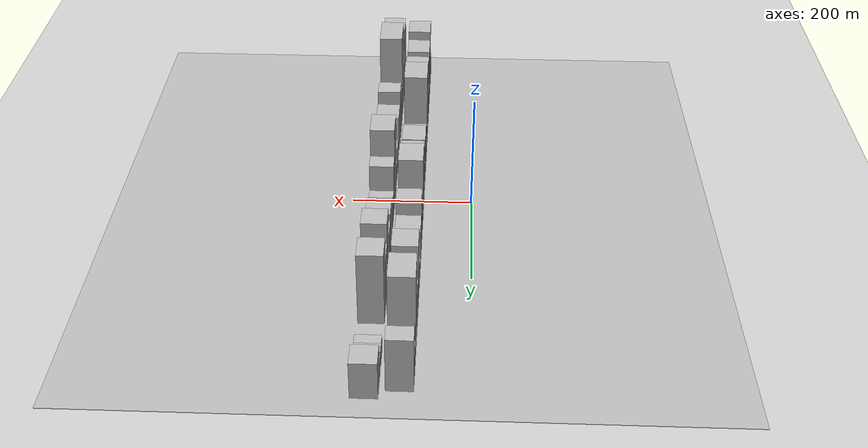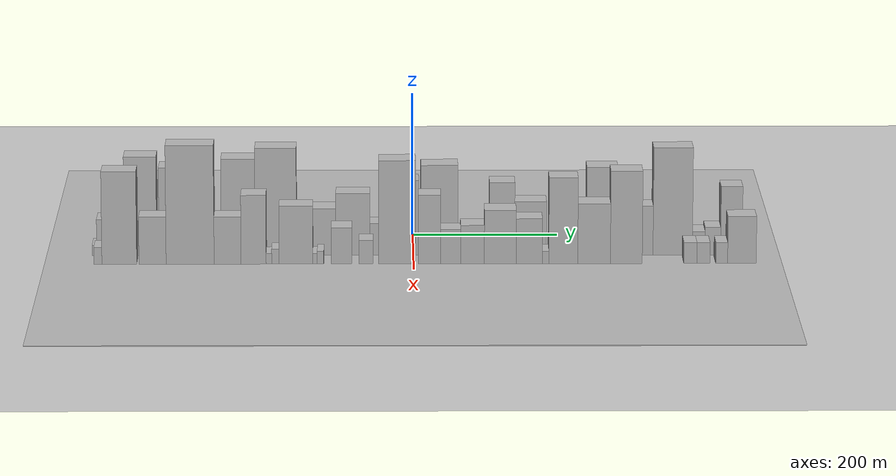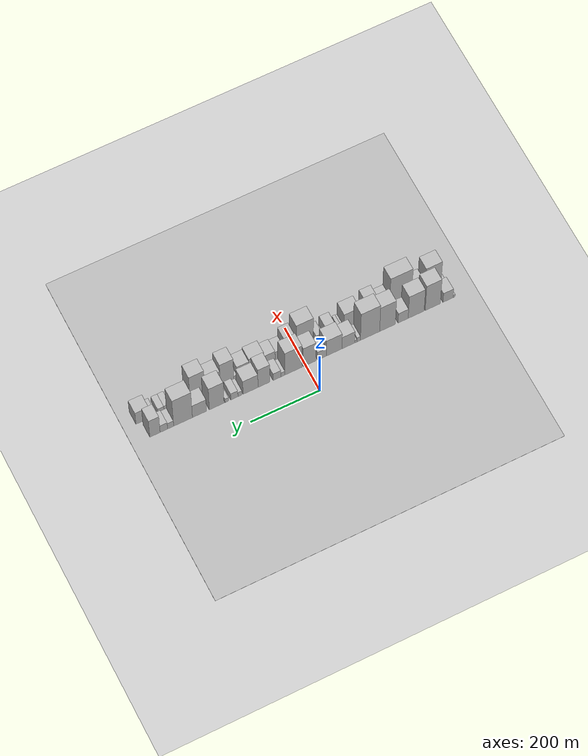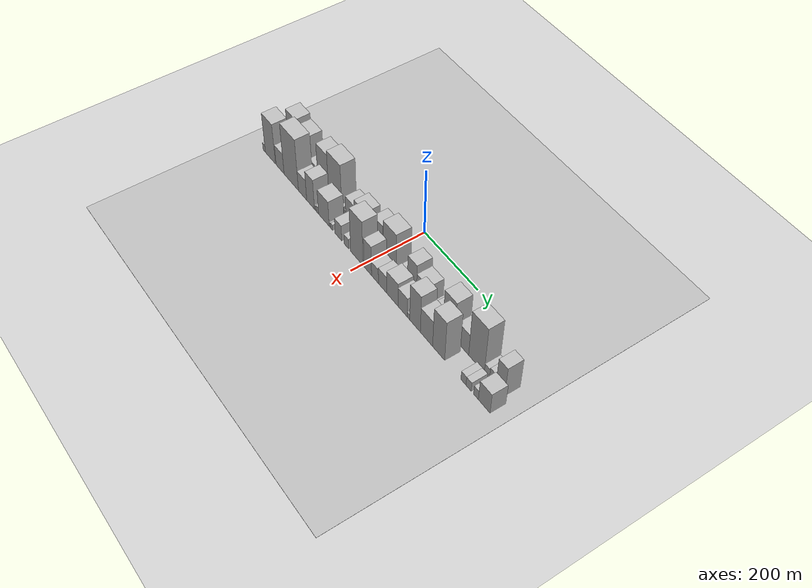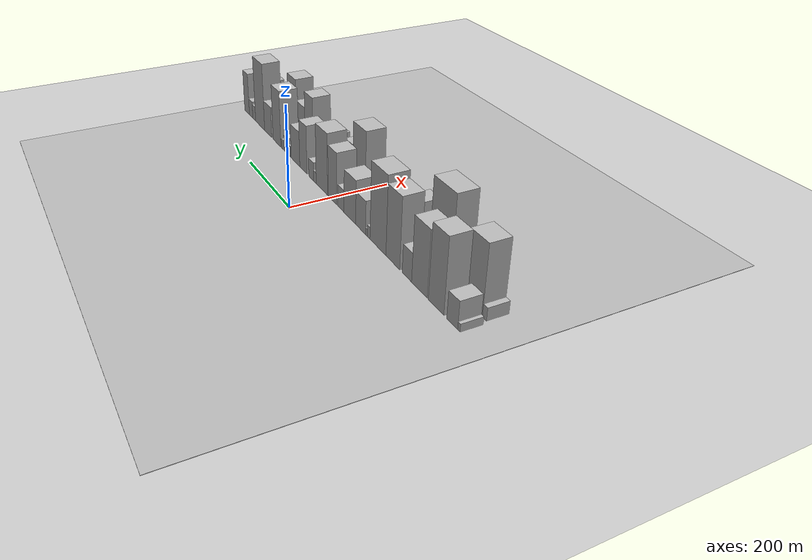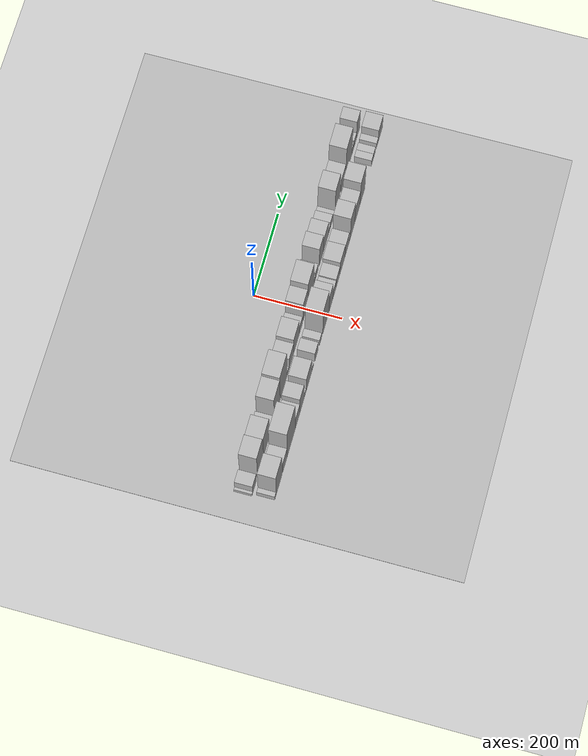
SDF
<sdf version="1.6">
 <world name="default">
  <include><name>ground_plane_1</name><uri>model://HANNAS_ground_plane</uri></include>
  <include>
   <name>ground_plane_2</name>
   <uri>model://HANNAS_ground_plane</uri>
   <pose>100 0 0  0 0 0</pose>
  </include>
  <model name="building_1">
   <static>1</static>
   <pose>100.0000 -434.8322 0 0.000000 0.000000 0.000000</pose>
   <link name="link">
    <pose>0 0 7.50 0 0 0</pose>
    <collision name="collision"><geometry><box><size>40.0000 6.3355 15.0000</size></box></geometry></collision>
    <visual name="visual">
     <cast_shadows>0</cast_shadows>
     <geometry><box><size>40.0000 6.3355 15.0000</size></box></geometry>
     <material>
      <script>
       <uri>model://HANNAS_wall/materials/scripts</uri>
       <uri>model://HANNAS_wall/materials/textures</uri>
       <name>vrc/HANNAS_wall</name>
      </script>
     </material>
    </visual>
   </link>
  </model>
  <model name="building_2">
   <static>1</static>
   <pose>100.0000 -416.9249 0 0.000000 0.000000 0.000000</pose>
   <link name="link">
    <pose>0 0 25.50 0 0 0</pose>
    <collision name="collision"><geometry><box><size>40.0000 29.4792 51.0000</size></box></geometry></collision>
    <visual name="visual">
     <cast_shadows>0</cast_shadows>
     <geometry><box><size>40.0000 29.4792 51.0000</size></box></geometry>
     <material>
      <script>
       <uri>model://HANNAS_wall/materials/scripts</uri>
       <uri>model://HANNAS_wall/materials/textures</uri>
       <name>vrc/HANNAS_wall</name>
      </script>
     </material>
    </visual>
   </link>
  </model>
  <model name="building_3">
   <static>1</static>
   <pose>100.0000 -371.9567 0 0.000000 0.000000 0.000000</pose>
   <link name="link">
    <pose>0 0 69.00 0 0 0</pose>
    <collision name="collision"><geometry><box><size>40.0000 44.4573 138.0000</size></box></geometry></collision>
    <visual name="visual">
     <cast_shadows>0</cast_shadows>
     <geometry><box><size>40.0000 44.4573 138.0000</size></box></geometry>
     <material>
      <script>
       <uri>model://HANNAS_wall/materials/scripts</uri>
       <uri>model://HANNAS_wall/materials/textures</uri>
       <name>vrc/HANNAS_wall</name>
      </script>
     </material>
    </visual>
   </link>
  </model>
  <model name="building_4">
   <static>1</static>
   <pose>100.0000 -323.0498 0 0.000000 0.000000 0.000000</pose>
   <link name="link">
    <pose>0 0 61.50 0 0 0</pose>
    <collision name="collision"><geometry><box><size>40.0000 47.3564 123.0000</size></box></geometry></collision>
    <visual name="visual">
     <cast_shadows>0</cast_shadows>
     <geometry><box><size>40.0000 47.3564 123.0000</size></box></geometry>
     <material>
      <script>
       <uri>model://HANNAS_wall/materials/scripts</uri>
       <uri>model://HANNAS_wall/materials/textures</uri>
       <name>vrc/HANNAS_wall</name>
      </script>
     </material>
    </visual>
   </link>
  </model>
  <model name="building_5">
   <static>1</static>
   <pose>100.0000 -284.5582 0 0.000000 0.000000 0.000000</pose>
   <link name="link">
    <pose>0 0 27.00 0 0 0</pose>
    <collision name="collision"><geometry><box><size>40.0000 29.6269 54.0000</size></box></geometry></collision>
    <visual name="visual">
     <cast_shadows>0</cast_shadows>
     <geometry><box><size>40.0000 29.6269 54.0000</size></box></geometry>
     <material>
      <script>
       <uri>model://HANNAS_wall/materials/scripts</uri>
       <uri>model://HANNAS_wall/materials/textures</uri>
       <name>vrc/HANNAS_wall</name>
      </script>
     </material>
    </visual>
   </link>
  </model>
  <model name="building_6">
   <static>1</static>
   <pose>100.0000 -238.6552 0 0.000000 0.000000 0.000000</pose>
   <link name="link">
    <pose>0 0 67.50 0 0 0</pose>
    <collision name="collision"><geometry><box><size>40.0000 46.1791 135.0000</size></box></geometry></collision>
    <visual name="visual">
     <cast_shadows>0</cast_shadows>
     <geometry><box><size>40.0000 46.1791 135.0000</size></box></geometry>
     <material>
      <script>
       <uri>model://HANNAS_wall/materials/scripts</uri>
       <uri>model://HANNAS_wall/materials/textures</uri>
       <name>vrc/HANNAS_wall</name>
      </script>
     </material>
    </visual>
   </link>
  </model>
  <model name="building_7">
   <static>1</static>
   <pose>100.0000 -187.3818 0 0.000000 0.000000 0.000000</pose>
   <link name="link">
    <pose>0 0 75.00 0 0 0</pose>
    <collision name="collision"><geometry><box><size>40.0000 56.3676 150.0000</size></box></geometry></collision>
    <visual name="visual">
     <cast_shadows>0</cast_shadows>
     <geometry><box><size>40.0000 56.3676 150.0000</size></box></geometry>
     <material>
      <script>
       <uri>model://HANNAS_wall/materials/scripts</uri>
       <uri>model://HANNAS_wall/materials/textures</uri>
       <name>vrc/HANNAS_wall</name>
      </script>
     </material>
    </visual>
   </link>
  </model>
  <model name="building_8">
   <static>1</static>
   <pose>100.0000 -154.1952 0 0.000000 0.000000 0.000000</pose>
   <link name="link">
    <pose>0 0 12.00 0 0 0</pose>
    <collision name="collision"><geometry><box><size>40.0000 10.0058 24.0000</size></box></geometry></collision>
    <visual name="visual">
     <cast_shadows>0</cast_shadows>
     <geometry><box><size>40.0000 10.0058 24.0000</size></box></geometry>
     <material>
      <script>
       <uri>model://HANNAS_wall/materials/scripts</uri>
       <uri>model://HANNAS_wall/materials/textures</uri>
       <name>vrc/HANNAS_wall</name>
      </script>
     </material>
    </visual>
   </link>
  </model>
  <model name="building_9">
   <static>1</static>
   <pose>100.0000 -146.0376 0 0.000000 0.000000 0.000000</pose>
   <link name="link">
    <pose>0 0 7.50 0 0 0</pose>
    <collision name="collision"><geometry><box><size>40.0000 6.3093 15.0000</size></box></geometry></collision>
    <visual name="visual">
     <cast_shadows>0</cast_shadows>
     <geometry><box><size>40.0000 6.3093 15.0000</size></box></geometry>
     <material>
      <script>
       <uri>model://HANNAS_wall/materials/scripts</uri>
       <uri>model://HANNAS_wall/materials/textures</uri>
       <name>vrc/HANNAS_wall</name>
      </script>
     </material>
    </visual>
   </link>
  </model>
  <model name="building_10">
   <static>1</static>
   <pose>100.0000 -124.1766 0 0.000000 0.000000 0.000000</pose>
   <link name="link">
    <pose>0 0 33.00 0 0 0</pose>
    <collision name="collision"><geometry><box><size>40.0000 37.4127 66.0000</size></box></geometry></collision>
    <visual name="visual">
     <cast_shadows>0</cast_shadows>
     <geometry><box><size>40.0000 37.4127 66.0000</size></box></geometry>
     <material>
      <script>
       <uri>model://HANNAS_wall/materials/scripts</uri>
       <uri>model://HANNAS_wall/materials/textures</uri>
       <name>vrc/HANNAS_wall</name>
      </script>
     </material>
    </visual>
   </link>
  </model>
  <model name="building_11">
   <static>1</static>
   <pose>100.0000 -82.4010 0 0.000000 0.000000 0.000000</pose>
   <link name="link">
    <pose>0 0 43.50 0 0 0</pose>
    <collision name="collision"><geometry><box><size>40.0000 46.1387 87.0000</size></box></geometry></collision>
    <visual name="visual">
     <cast_shadows>0</cast_shadows>
     <geometry><box><size>40.0000 46.1387 87.0000</size></box></geometry>
     <material>
      <script>
       <uri>model://HANNAS_wall/materials/scripts</uri>
       <uri>model://HANNAS_wall/materials/textures</uri>
       <name>vrc/HANNAS_wall</name>
      </script>
     </material>
    </visual>
   </link>
  </model>
  <model name="building_12">
   <static>1</static>
   <pose>100.0000 -46.7820 0 0.000000 0.000000 0.000000</pose>
   <link name="link">
    <pose>0 0 22.50 0 0 0</pose>
    <collision name="collision"><geometry><box><size>40.0000 25.0992 45.0000</size></box></geometry></collision>
    <visual name="visual">
     <cast_shadows>0</cast_shadows>
     <geometry><box><size>40.0000 25.0992 45.0000</size></box></geometry>
     <material>
      <script>
       <uri>model://HANNAS_wall/materials/scripts</uri>
       <uri>model://HANNAS_wall/materials/textures</uri>
       <name>vrc/HANNAS_wall</name>
      </script>
     </material>
    </visual>
   </link>
  </model>
  <model name="building_13">
   <static>1</static>
   <pose>100.0000 -10.8533 0 0.000000 0.000000 0.000000</pose>
   <link name="link">
    <pose>0 0 52.50 0 0 0</pose>
    <collision name="collision"><geometry><box><size>40.0000 36.7583 105.0000</size></box></geometry></collision>
    <visual name="visual">
     <cast_shadows>0</cast_shadows>
     <geometry><box><size>40.0000 36.7583 105.0000</size></box></geometry>
     <material>
      <script>
       <uri>model://HANNAS_wall/materials/scripts</uri>
       <uri>model://HANNAS_wall/materials/textures</uri>
       <name>vrc/HANNAS_wall</name>
      </script>
     </material>
    </visual>
   </link>
  </model>
  <model name="building_14">
   <static>1</static>
   <pose>100.0000 35.6815 0 0.000000 0.000000 0.000000</pose>
   <link name="link">
    <pose>0 0 63.00 0 0 0</pose>
    <collision name="collision"><geometry><box><size>40.0000 50.3112 126.0000</size></box></geometry></collision>
    <visual name="visual">
     <cast_shadows>0</cast_shadows>
     <geometry><box><size>40.0000 50.3112 126.0000</size></box></geometry>
     <material>
      <script>
       <uri>model://HANNAS_wall/materials/scripts</uri>
       <uri>model://HANNAS_wall/materials/textures</uri>
       <name>vrc/HANNAS_wall</name>
      </script>
     </material>
    </visual>
   </link>
  </model>
  <model name="building_15">
   <static>1</static>
   <pose>100.0000 66.7741 0 0.000000 0.000000 0.000000</pose>
   <link name="link">
    <pose>0 0 12.00 0 0 0</pose>
    <collision name="collision"><geometry><box><size>40.0000 11.8741 24.0000</size></box></geometry></collision>
    <visual name="visual">
     <cast_shadows>0</cast_shadows>
     <geometry><box><size>40.0000 11.8741 24.0000</size></box></geometry>
     <material>
      <script>
       <uri>model://HANNAS_wall/materials/scripts</uri>
       <uri>model://HANNAS_wall/materials/textures</uri>
       <name>vrc/HANNAS_wall</name>
      </script>
     </material>
    </visual>
   </link>
  </model>
  <model name="building_16">
   <static>1</static>
   <pose>100.0000 83.8443 0 0.000000 0.000000 0.000000</pose>
   <link name="link">
    <pose>0 0 19.50 0 0 0</pose>
    <collision name="collision"><geometry><box><size>40.0000 22.2663 39.0000</size></box></geometry></collision>
    <visual name="visual">
     <cast_shadows>0</cast_shadows>
     <geometry><box><size>40.0000 22.2663 39.0000</size></box></geometry>
     <material>
      <script>
       <uri>model://HANNAS_wall/materials/scripts</uri>
       <uri>model://HANNAS_wall/materials/textures</uri>
       <name>vrc/HANNAS_wall</name>
      </script>
     </material>
    </visual>
   </link>
  </model>
  <model name="building_17">
   <static>1</static>
   <pose>100.0000 121.2417 0 0.000000 0.000000 0.000000</pose>
   <link name="link">
    <pose>0 0 51.00 0 0 0</pose>
    <collision name="collision"><geometry><box><size>40.0000 34.5285 102.0000</size></box></geometry></collision>
    <visual name="visual">
     <cast_shadows>0</cast_shadows>
     <geometry><box><size>40.0000 34.5285 102.0000</size></box></geometry>
     <material>
      <script>
       <uri>model://HANNAS_wall/materials/scripts</uri>
       <uri>model://HANNAS_wall/materials/textures</uri>
       <name>vrc/HANNAS_wall</name>
      </script>
     </material>
    </visual>
   </link>
  </model>
  <model name="building_18">
   <static>1</static>
   <pose>100.0000 160.1360 0 0.000000 0.000000 0.000000</pose>
   <link name="link">
    <pose>0 0 37.50 0 0 0</pose>
    <collision name="collision"><geometry><box><size>40.0000 43.2600 75.0000</size></box></geometry></collision>
    <visual name="visual">
     <cast_shadows>0</cast_shadows>
     <geometry><box><size>40.0000 43.2600 75.0000</size></box></geometry>
     <material>
      <script>
       <uri>model://HANNAS_wall/materials/scripts</uri>
       <uri>model://HANNAS_wall/materials/textures</uri>
       <name>vrc/HANNAS_wall</name>
      </script>
     </material>
    </visual>
   </link>
  </model>
  <model name="building_19">
   <static>1</static>
   <pose>100.0000 190.6371 0 0.000000 0.000000 0.000000</pose>
   <link name="link">
    <pose>0 0 12.00 0 0 0</pose>
    <collision name="collision"><geometry><box><size>40.0000 11.7422 24.0000</size></box></geometry></collision>
    <visual name="visual">
     <cast_shadows>0</cast_shadows>
     <geometry><box><size>40.0000 11.7422 24.0000</size></box></geometry>
     <material>
      <script>
       <uri>model://HANNAS_wall/materials/scripts</uri>
       <uri>model://HANNAS_wall/materials/textures</uri>
       <name>vrc/HANNAS_wall</name>
      </script>
     </material>
    </visual>
   </link>
  </model>
  <model name="building_20">
   <static>1</static>
   <pose>100.0000 206.8186 0 0.000000 0.000000 0.000000</pose>
   <link name="link">
    <pose>0 0 18.00 0 0 0</pose>
    <collision name="collision"><geometry><box><size>40.0000 20.6209 36.0000</size></box></geometry></collision>
    <visual name="visual">
     <cast_shadows>0</cast_shadows>
     <geometry><box><size>40.0000 20.6209 36.0000</size></box></geometry>
     <material>
      <script>
       <uri>model://HANNAS_wall/materials/scripts</uri>
       <uri>model://HANNAS_wall/materials/textures</uri>
       <name>vrc/HANNAS_wall</name>
      </script>
     </material>
    </visual>
   </link>
  </model>
  <model name="building_21">
   <static>1</static>
   <pose>100.0000 228.3095 0 0.000000 0.000000 0.000000</pose>
   <link name="link">
    <pose>0 0 10.50 0 0 0</pose>
    <collision name="collision"><geometry><box><size>40.0000 10.3608 21.0000</size></box></geometry></collision>
    <visual name="visual">
     <cast_shadows>0</cast_shadows>
     <geometry><box><size>40.0000 10.3608 21.0000</size></box></geometry>
     <material>
      <script>
       <uri>model://HANNAS_wall/materials/scripts</uri>
       <uri>model://HANNAS_wall/materials/textures</uri>
       <name>vrc/HANNAS_wall</name>
      </script>
     </material>
    </visual>
   </link>
  </model>
  <model name="building_22">
   <static>1</static>
   <pose>100.0000 257.6089 0 0.000000 0.000000 0.000000</pose>
   <link name="link">
    <pose>0 0 61.50 0 0 0</pose>
    <collision name="collision"><geometry><box><size>40.0000 42.2379 123.0000</size></box></geometry></collision>
    <visual name="visual">
     <cast_shadows>0</cast_shadows>
     <geometry><box><size>40.0000 42.2379 123.0000</size></box></geometry>
     <material>
      <script>
       <uri>model://HANNAS_wall/materials/scripts</uri>
       <uri>model://HANNAS_wall/materials/textures</uri>
       <name>vrc/HANNAS_wall</name>
      </script>
     </material>
    </visual>
   </link>
  </model>
  <model name="building_23">
   <static>1</static>
   <pose>100.0000 306.9933 0 0.000000 0.000000 0.000000</pose>
   <link name="link">
    <pose>0 0 34.50 0 0 0</pose>
    <collision name="collision"><geometry><box><size>40.0000 40.5310 69.0000</size></box></geometry></collision>
    <visual name="visual">
     <cast_shadows>0</cast_shadows>
     <geometry><box><size>40.0000 40.5310 69.0000</size></box></geometry>
     <material>
      <script>
       <uri>model://HANNAS_wall/materials/scripts</uri>
       <uri>model://HANNAS_wall/materials/textures</uri>
       <name>vrc/HANNAS_wall</name>
      </script>
     </material>
    </visual>
   </link>
  </model>
  <model name="building_24">
   <static>1</static>
   <pose>100.0000 354.1156 0 0.000000 0.000000 0.000000</pose>
   <link name="link">
    <pose>0 0 75.00 0 0 0</pose>
    <collision name="collision"><geometry><box><size>40.0000 53.7137 150.0000</size></box></geometry></collision>
    <visual name="visual">
     <cast_shadows>0</cast_shadows>
     <geometry><box><size>40.0000 53.7137 150.0000</size></box></geometry>
     <material>
      <script>
       <uri>model://HANNAS_wall/materials/scripts</uri>
       <uri>model://HANNAS_wall/materials/textures</uri>
       <name>vrc/HANNAS_wall</name>
      </script>
     </material>
    </visual>
   </link>
  </model>
  <model name="building_25">
   <static>1</static>
   <pose>100.0000 389.6990 0 0.000000 0.000000 0.000000</pose>
   <link name="link">
    <pose>0 0 16.50 0 0 0</pose>
    <collision name="collision"><geometry><box><size>40.0000 17.4530 33.0000</size></box></geometry></collision>
    <visual name="visual">
     <cast_shadows>0</cast_shadows>
     <geometry><box><size>40.0000 17.4530 33.0000</size></box></geometry>
     <material>
      <script>
       <uri>model://HANNAS_wall/materials/scripts</uri>
       <uri>model://HANNAS_wall/materials/textures</uri>
       <name>vrc/HANNAS_wall</name>
      </script>
     </material>
    </visual>
   </link>
  </model>
  <model name="building_26">
   <static>1</static>
   <pose>100.0000 408.9990 0 0.000000 0.000000 0.000000</pose>
   <link name="link">
    <pose>0 0 19.50 0 0 0</pose>
    <collision name="collision"><geometry><box><size>40.0000 21.1470 39.0000</size></box></geometry></collision>
    <visual name="visual">
     <cast_shadows>0</cast_shadows>
     <geometry><box><size>40.0000 21.1470 39.0000</size></box></geometry>
     <material>
      <script>
       <uri>model://HANNAS_wall/materials/scripts</uri>
       <uri>model://HANNAS_wall/materials/textures</uri>
       <name>vrc/HANNAS_wall</name>
      </script>
     </material>
    </visual>
   </link>
  </model>
  <model name="building_27">
   <static>1</static>
   <pose>100.0000 434.3063 0 0.000000 0.000000 0.000000</pose>
   <link name="link">
    <pose>0 0 48.00 0 0 0</pose>
    <collision name="collision"><geometry><box><size>40.0000 29.4676 96.0000</size></box></geometry></collision>
    <visual name="visual">
     <cast_shadows>0</cast_shadows>
     <geometry><box><size>40.0000 29.4676 96.0000</size></box></geometry>
     <material>
      <script>
       <uri>model://HANNAS_wall/materials/scripts</uri>
       <uri>model://HANNAS_wall/materials/textures</uri>
       <name>vrc/HANNAS_wall</name>
      </script>
     </material>
    </visual>
   </link>
  </model>
  <model name="building_28">
   <static>1</static>
   <pose>149.0000 -427.5589 0 0.000000 0.000000 0.000000</pose>
   <link name="link">
    <pose>0 0 12.00 0 0 0</pose>
    <collision name="collision"><geometry><box><size>40.0000 10.8823 24.0000</size></box></geometry></collision>
    <visual name="visual">
     <cast_shadows>0</cast_shadows>
     <geometry><box><size>40.0000 10.8823 24.0000</size></box></geometry>
     <material>
      <script>
       <uri>model://HANNAS_wall/materials/scripts</uri>
       <uri>model://HANNAS_wall/materials/textures</uri>
       <name>vrc/HANNAS_wall</name>
      </script>
     </material>
    </visual>
   </link>
  </model>
  <model name="building_29">
   <static>1</static>
   <pose>149.0000 -398.4728 0 0.000000 0.000000 0.000000</pose>
   <link name="link">
    <pose>0 0 64.50 0 0 0</pose>
    <collision name="collision"><geometry><box><size>40.0000 47.2898 129.0000</size></box></geometry></collision>
    <visual name="visual">
     <cast_shadows>0</cast_shadows>
     <geometry><box><size>40.0000 47.2898 129.0000</size></box></geometry>
     <material>
      <script>
       <uri>model://HANNAS_wall/materials/scripts</uri>
       <uri>model://HANNAS_wall/materials/textures</uri>
       <name>vrc/HANNAS_wall</name>
      </script>
     </material>
    </visual>
   </link>
  </model>
  <model name="building_30">
   <static>1</static>
   <pose>149.0000 -353.4633 0 0.000000 0.000000 0.000000</pose>
   <link name="link">
    <pose>0 0 33.00 0 0 0</pose>
    <collision name="collision"><geometry><box><size>40.0000 36.7293 66.0000</size></box></geometry></collision>
    <visual name="visual">
     <cast_shadows>0</cast_shadows>
     <geometry><box><size>40.0000 36.7293 66.0000</size></box></geometry>
     <material>
      <script>
       <uri>model://HANNAS_wall/materials/scripts</uri>
       <uri>model://HANNAS_wall/materials/textures</uri>
       <name>vrc/HANNAS_wall</name>
      </script>
     </material>
    </visual>
   </link>
  </model>
  <model name="building_31">
   <static>1</static>
   <pose>149.0000 -302.5586 0 0.000000 0.000000 0.000000</pose>
   <link name="link">
    <pose>0 0 82.50 0 0 0</pose>
    <collision name="collision"><geometry><box><size>40.0000 65.0799 165.0000</size></box></geometry></collision>
    <visual name="visual">
     <cast_shadows>0</cast_shadows>
     <geometry><box><size>40.0000 65.0799 165.0000</size></box></geometry>
     <material>
      <script>
       <uri>model://HANNAS_wall/materials/scripts</uri>
       <uri>model://HANNAS_wall/materials/textures</uri>
       <name>vrc/HANNAS_wall</name>
      </script>
     </material>
    </visual>
   </link>
  </model>
  <model name="building_32">
   <static>1</static>
   <pose>149.0000 -251.8040 0 0.000000 0.000000 0.000000</pose>
   <link name="link">
    <pose>0 0 33.00 0 0 0</pose>
    <collision name="collision"><geometry><box><size>40.0000 36.4293 66.0000</size></box></geometry></collision>
    <visual name="visual">
     <cast_shadows>0</cast_shadows>
     <geometry><box><size>40.0000 36.4293 66.0000</size></box></geometry>
     <material>
      <script>
       <uri>model://HANNAS_wall/materials/scripts</uri>
       <uri>model://HANNAS_wall/materials/textures</uri>
       <name>vrc/HANNAS_wall</name>
      </script>
     </material>
    </visual>
   </link>
  </model>
  <model name="building_33">
   <static>1</static>
   <pose>149.0000 -216.5576 0 0.000000 0.000000 0.000000</pose>
   <link name="link">
    <pose>0 0 48.00 0 0 0</pose>
    <collision name="collision"><geometry><box><size>40.0000 34.0635 96.0000</size></box></geometry></collision>
    <visual name="visual">
     <cast_shadows>0</cast_shadows>
     <geometry><box><size>40.0000 34.0635 96.0000</size></box></geometry>
     <material>
      <script>
       <uri>model://HANNAS_wall/materials/scripts</uri>
       <uri>model://HANNAS_wall/materials/textures</uri>
       <name>vrc/HANNAS_wall</name>
      </script>
     </material>
    </visual>
   </link>
  </model>
  <model name="building_34">
   <static>1</static>
   <pose>149.0000 -195.7983 0 0.000000 0.000000 0.000000</pose>
   <link name="link">
    <pose>0 0 7.50 0 0 0</pose>
    <collision name="collision"><geometry><box><size>40.0000 7.4550 15.0000</size></box></geometry></collision>
    <visual name="visual">
     <cast_shadows>0</cast_shadows>
     <geometry><box><size>40.0000 7.4550 15.0000</size></box></geometry>
     <material>
      <script>
       <uri>model://HANNAS_wall/materials/scripts</uri>
       <uri>model://HANNAS_wall/materials/textures</uri>
       <name>vrc/HANNAS_wall</name>
      </script>
     </material>
    </visual>
   </link>
  </model>
  <model name="building_35">
   <static>1</static>
   <pose>149.0000 -187.0273 0 0.000000 0.000000 0.000000</pose>
   <link name="link">
    <pose>0 0 10.50 0 0 0</pose>
    <collision name="collision"><geometry><box><size>40.0000 10.0869 21.0000</size></box></geometry></collision>
    <visual name="visual">
     <cast_shadows>0</cast_shadows>
     <geometry><box><size>40.0000 10.0869 21.0000</size></box></geometry>
     <material>
      <script>
       <uri>model://HANNAS_wall/materials/scripts</uri>
       <uri>model://HANNAS_wall/materials/textures</uri>
       <name>vrc/HANNAS_wall</name>
      </script>
     </material>
    </visual>
   </link>
  </model>
  <model name="building_36">
   <static>1</static>
   <pose>149.0000 -159.2099 0 0.000000 0.000000 0.000000</pose>
   <link name="link">
    <pose>0 0 40.50 0 0 0</pose>
    <collision name="collision"><geometry><box><size>40.0000 45.5479 81.0000</size></box></geometry></collision>
    <visual name="visual">
     <cast_shadows>0</cast_shadows>
     <geometry><box><size>40.0000 45.5479 81.0000</size></box></geometry>
     <material>
      <script>
       <uri>model://HANNAS_wall/materials/scripts</uri>
       <uri>model://HANNAS_wall/materials/textures</uri>
       <name>vrc/HANNAS_wall</name>
      </script>
     </material>
    </visual>
   </link>
  </model>
  <model name="building_37">
   <static>1</static>
   <pose>149.0000 -133.3747 0 0.000000 0.000000 0.000000</pose>
   <link name="link">
    <pose>0 0 7.50 0 0 0</pose>
    <collision name="collision"><geometry><box><size>40.0000 6.1224 15.0000</size></box></geometry></collision>
    <visual name="visual">
     <cast_shadows>0</cast_shadows>
     <geometry><box><size>40.0000 6.1224 15.0000</size></box></geometry>
     <material>
      <script>
       <uri>model://HANNAS_wall/materials/scripts</uri>
       <uri>model://HANNAS_wall/materials/textures</uri>
       <name>vrc/HANNAS_wall</name>
      </script>
     </material>
    </visual>
   </link>
  </model>
  <model name="building_38">
   <static>1</static>
   <pose>149.0000 -125.8285 0 0.000000 0.000000 0.000000</pose>
   <link name="link">
    <pose>0 0 9.00 0 0 0</pose>
    <collision name="collision"><geometry><box><size>40.0000 8.9700 18.0000</size></box></geometry></collision>
    <visual name="visual">
     <cast_shadows>0</cast_shadows>
     <geometry><box><size>40.0000 8.9700 18.0000</size></box></geometry>
     <material>
      <script>
       <uri>model://HANNAS_wall/materials/scripts</uri>
       <uri>model://HANNAS_wall/materials/textures</uri>
       <name>vrc/HANNAS_wall</name>
      </script>
     </material>
    </visual>
   </link>
  </model>
  <model name="building_39">
   <static>1</static>
   <pose>149.0000 -97.4566 0 0.000000 0.000000 0.000000</pose>
   <link name="link">
    <pose>0 0 25.50 0 0 0</pose>
    <collision name="collision"><geometry><box><size>40.0000 27.7738 51.0000</size></box></geometry></collision>
    <visual name="visual">
     <cast_shadows>0</cast_shadows>
     <geometry><box><size>40.0000 27.7738 51.0000</size></box></geometry>
     <material>
      <script>
       <uri>model://HANNAS_wall/materials/scripts</uri>
       <uri>model://HANNAS_wall/materials/textures</uri>
       <name>vrc/HANNAS_wall</name>
      </script>
     </material>
    </visual>
   </link>
  </model>
  <model name="building_40">
   <static>1</static>
   <pose>149.0000 -64.2130 0 0.000000 0.000000 0.000000</pose>
   <link name="link">
    <pose>0 0 16.50 0 0 0</pose>
    <collision name="collision"><geometry><box><size>40.0000 18.7135 33.0000</size></box></geometry></collision>
    <visual name="visual">
     <cast_shadows>0</cast_shadows>
     <geometry><box><size>40.0000 18.7135 33.0000</size></box></geometry>
     <material>
      <script>
       <uri>model://HANNAS_wall/materials/scripts</uri>
       <uri>model://HANNAS_wall/materials/textures</uri>
       <name>vrc/HANNAS_wall</name>
      </script>
     </material>
    </visual>
   </link>
  </model>
  <model name="building_41">
   <static>1</static>
   <pose>149.0000 -22.0319 0 0.000000 0.000000 0.000000</pose>
   <link name="link">
    <pose>0 0 72.00 0 0 0</pose>
    <collision name="collision"><geometry><box><size>40.0000 49.6487 144.0000</size></box></geometry></collision>
    <visual name="visual">
     <cast_shadows>0</cast_shadows>
     <geometry><box><size>40.0000 49.6487 144.0000</size></box></geometry>
     <material>
      <script>
       <uri>model://HANNAS_wall/materials/scripts</uri>
       <uri>model://HANNAS_wall/materials/textures</uri>
       <name>vrc/HANNAS_wall</name>
      </script>
     </material>
    </visual>
   </link>
  </model>
  <model name="building_42">
   <static>1</static>
   <pose>149.0000 21.8929 0 0.000000 0.000000 0.000000</pose>
   <link name="link">
    <pose>0 0 48.00 0 0 0</pose>
    <collision name="collision"><geometry><box><size>40.0000 30.2009 96.0000</size></box></geometry></collision>
    <visual name="visual">
     <cast_shadows>0</cast_shadows>
     <geometry><box><size>40.0000 30.2009 96.0000</size></box></geometry>
     <material>
      <script>
       <uri>model://HANNAS_wall/materials/scripts</uri>
       <uri>model://HANNAS_wall/materials/textures</uri>
       <name>vrc/HANNAS_wall</name>
      </script>
     </material>
    </visual>
   </link>
  </model>
  <model name="building_43">
   <static>1</static>
   <pose>149.0000 50.5938 0 0.000000 0.000000 0.000000</pose>
   <link name="link">
    <pose>0 0 24.00 0 0 0</pose>
    <collision name="collision"><geometry><box><size>40.0000 27.2010 48.0000</size></box></geometry></collision>
    <visual name="visual">
     <cast_shadows>0</cast_shadows>
     <geometry><box><size>40.0000 27.2010 48.0000</size></box></geometry>
     <material>
      <script>
       <uri>model://HANNAS_wall/materials/scripts</uri>
       <uri>model://HANNAS_wall/materials/textures</uri>
       <name>vrc/HANNAS_wall</name>
      </script>
     </material>
    </visual>
   </link>
  </model>
  <model name="building_44">
   <static>1</static>
   <pose>149.0000 80.1926 0 0.000000 0.000000 0.000000</pose>
   <link name="link">
    <pose>0 0 27.00 0 0 0</pose>
    <collision name="collision"><geometry><box><size>40.0000 31.9966 54.0000</size></box></geometry></collision>
    <visual name="visual">
     <cast_shadows>0</cast_shadows>
     <geometry><box><size>40.0000 31.9966 54.0000</size></box></geometry>
     <material>
      <script>
       <uri>model://HANNAS_wall/materials/scripts</uri>
       <uri>model://HANNAS_wall/materials/textures</uri>
       <name>vrc/HANNAS_wall</name>
      </script>
     </material>
    </visual>
   </link>
  </model>
  <model name="building_45">
   <static>1</static>
   <pose>149.0000 117.8204 0 0.000000 0.000000 0.000000</pose>
   <link name="link">
    <pose>0 0 37.50 0 0 0</pose>
    <collision name="collision"><geometry><box><size>40.0000 43.2590 75.0000</size></box></geometry></collision>
    <visual name="visual">
     <cast_shadows>0</cast_shadows>
     <geometry><box><size>40.0000 43.2590 75.0000</size></box></geometry>
     <material>
      <script>
       <uri>model://HANNAS_wall/materials/scripts</uri>
       <uri>model://HANNAS_wall/materials/textures</uri>
       <name>vrc/HANNAS_wall</name>
      </script>
     </material>
    </visual>
   </link>
  </model>
  <model name="building_46">
   <static>1</static>
   <pose>149.0000 157.1199 0 0.000000 0.000000 0.000000</pose>
   <link name="link">
    <pose>0 0 31.50 0 0 0</pose>
    <collision name="collision"><geometry><box><size>40.0000 35.3401 63.0000</size></box></geometry></collision>
    <visual name="visual">
     <cast_shadows>0</cast_shadows>
     <geometry><box><size>40.0000 35.3401 63.0000</size></box></geometry>
     <material>
      <script>
       <uri>model://HANNAS_wall/materials/scripts</uri>
       <uri>model://HANNAS_wall/materials/textures</uri>
       <name>vrc/HANNAS_wall</name>
      </script>
     </material>
    </visual>
   </link>
  </model>
  <model name="building_47">
   <static>1</static>
   <pose>149.0000 179.2718 0 0.000000 0.000000 0.000000</pose>
   <link name="link">
    <pose>0 0 9.00 0 0 0</pose>
    <collision name="collision"><geometry><box><size>40.0000 8.9637 18.0000</size></box></geometry></collision>
    <visual name="visual">
     <cast_shadows>0</cast_shadows>
     <geometry><box><size>40.0000 8.9637 18.0000</size></box></geometry>
     <material>
      <script>
       <uri>model://HANNAS_wall/materials/scripts</uri>
       <uri>model://HANNAS_wall/materials/textures</uri>
       <name>vrc/HANNAS_wall</name>
      </script>
     </material>
    </visual>
   </link>
  </model>
  <model name="building_48">
   <static>1</static>
   <pose>149.0000 203.2956 0 0.000000 0.000000 0.000000</pose>
   <link name="link">
    <pose>0 0 60.00 0 0 0</pose>
    <collision name="collision"><geometry><box><size>40.0000 39.0839 120.0000</size></box></geometry></collision>
    <visual name="visual">
     <cast_shadows>0</cast_shadows>
     <geometry><box><size>40.0000 39.0839 120.0000</size></box></geometry>
     <material>
      <script>
       <uri>model://HANNAS_wall/materials/scripts</uri>
       <uri>model://HANNAS_wall/materials/textures</uri>
       <name>vrc/HANNAS_wall</name>
      </script>
     </material>
    </visual>
   </link>
  </model>
  <model name="building_49">
   <static>1</static>
   <pose>149.0000 244.9617 0 0.000000 0.000000 0.000000</pose>
   <link name="link">
    <pose>0 0 42.00 0 0 0</pose>
    <collision name="collision"><geometry><box><size>40.0000 44.2483 84.0000</size></box></geometry></collision>
    <visual name="visual">
     <cast_shadows>0</cast_shadows>
     <geometry><box><size>40.0000 44.2483 84.0000</size></box></geometry>
     <material>
      <script>
       <uri>model://HANNAS_wall/materials/scripts</uri>
       <uri>model://HANNAS_wall/materials/textures</uri>
       <name>vrc/HANNAS_wall</name>
      </script>
     </material>
    </visual>
   </link>
  </model>
  <model name="building_50">
   <static>1</static>
   <pose>149.0000 288.6667 0 0.000000 0.000000 0.000000</pose>
   <link name="link">
    <pose>0 0 64.50 0 0 0</pose>
    <collision name="collision"><geometry><box><size>40.0000 43.1616 129.0000</size></box></geometry></collision>
    <visual name="visual">
     <cast_shadows>0</cast_shadows>
     <geometry><box><size>40.0000 43.1616 129.0000</size></box></geometry>
     <material>
      <script>
       <uri>model://HANNAS_wall/materials/scripts</uri>
       <uri>model://HANNAS_wall/materials/textures</uri>
       <name>vrc/HANNAS_wall</name>
      </script>
     </material>
    </visual>
   </link>
  </model>
  <model name="building_51">
   <static>1</static>
   <pose>149.0000 375.4961 0 0.000000 0.000000 0.000000</pose>
   <link name="link">
    <pose>0 0 15.00 0 0 0</pose>
    <collision name="collision"><geometry><box><size>40.0000 17.4991 30.0000</size></box></geometry></collision>
    <visual name="visual">
     <cast_shadows>0</cast_shadows>
     <geometry><box><size>40.0000 17.4991 30.0000</size></box></geometry>
     <material>
      <script>
       <uri>model://HANNAS_wall/materials/scripts</uri>
       <uri>model://HANNAS_wall/materials/textures</uri>
       <name>vrc/HANNAS_wall</name>
      </script>
     </material>
    </visual>
   </link>
  </model>
  <model name="building_52">
   <static>1</static>
   <pose>149.0000 393.1468 0 0.000000 0.000000 0.000000</pose>
   <link name="link">
    <pose>0 0 15.00 0 0 0</pose>
    <collision name="collision"><geometry><box><size>40.0000 17.8023 30.0000</size></box></geometry></collision>
    <visual name="visual">
     <cast_shadows>0</cast_shadows>
     <geometry><box><size>40.0000 17.8023 30.0000</size></box></geometry>
     <material>
      <script>
       <uri>model://HANNAS_wall/materials/scripts</uri>
       <uri>model://HANNAS_wall/materials/textures</uri>
       <name>vrc/HANNAS_wall</name>
      </script>
     </material>
    </visual>
   </link>
  </model>
  <model name="building_53">
   <static>1</static>
   <pose>149.0000 418.0329 0 0.000000 0.000000 0.000000</pose>
   <link name="link">
    <pose>0 0 15.00 0 0 0</pose>
    <collision name="collision"><geometry><box><size>40.0000 15.9701 30.0000</size></box></geometry></collision>
    <visual name="visual">
     <cast_shadows>0</cast_shadows>
     <geometry><box><size>40.0000 15.9701 30.0000</size></box></geometry>
     <material>
      <script>
       <uri>model://HANNAS_wall/materials/scripts</uri>
       <uri>model://HANNAS_wall/materials/textures</uri>
       <name>vrc/HANNAS_wall</name>
      </script>
     </material>
    </visual>
   </link>
  </model>
  <model name="building_54">
   <static>1</static>
   <pose>149.0000 445.4146 0 0.000000 0.000000 0.000000</pose>
   <link name="link">
    <pose>0 0 33.00 0 0 0</pose>
    <collision name="collision"><geometry><box><size>40.0000 38.7932 66.0000</size></box></geometry></collision>
    <visual name="visual">
     <cast_shadows>0</cast_shadows>
     <geometry><box><size>40.0000 38.7932 66.0000</size></box></geometry>
     <material>
      <script>
       <uri>model://HANNAS_wall/materials/scripts</uri>
       <uri>model://HANNAS_wall/materials/textures</uri>
       <name>vrc/HANNAS_wall</name>
      </script>
     </material>
    </visual>
   </link>
  </model>
 </world>
</sdf>
